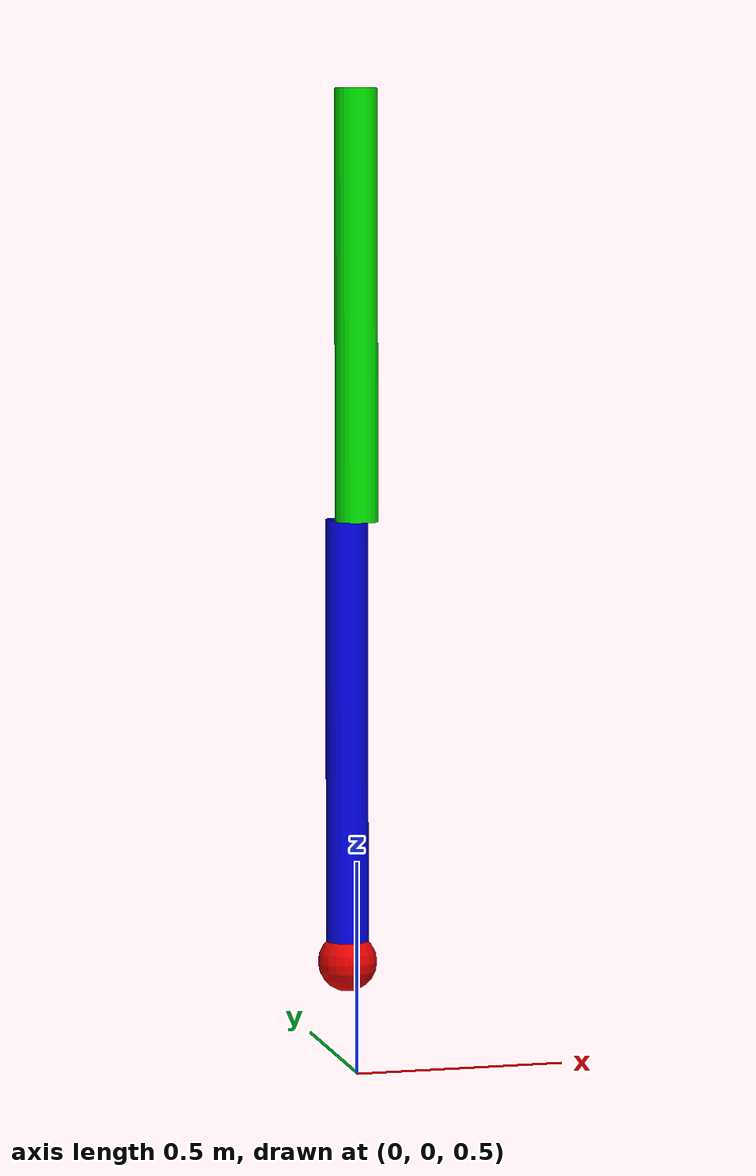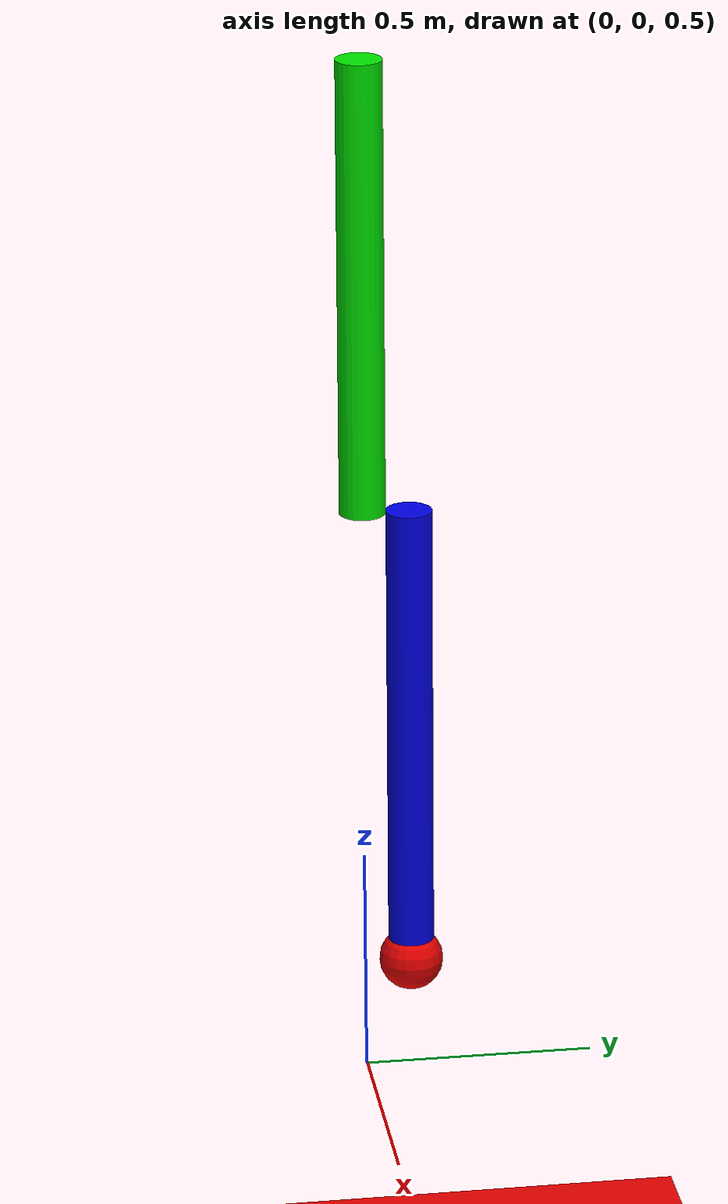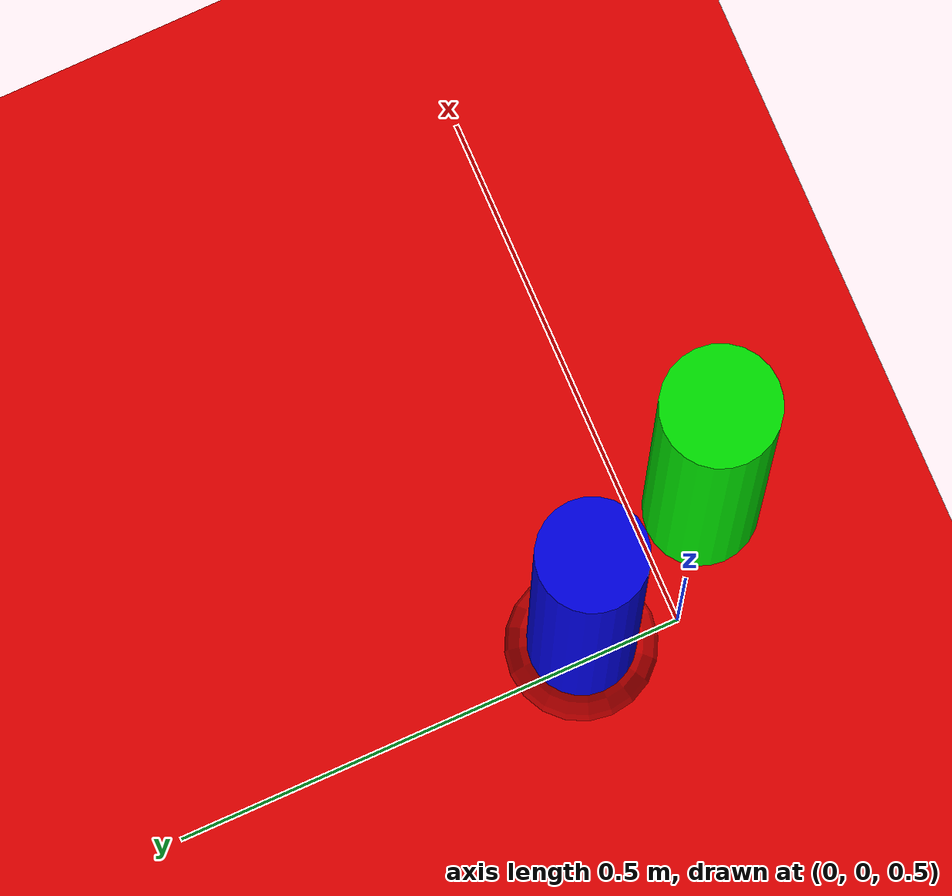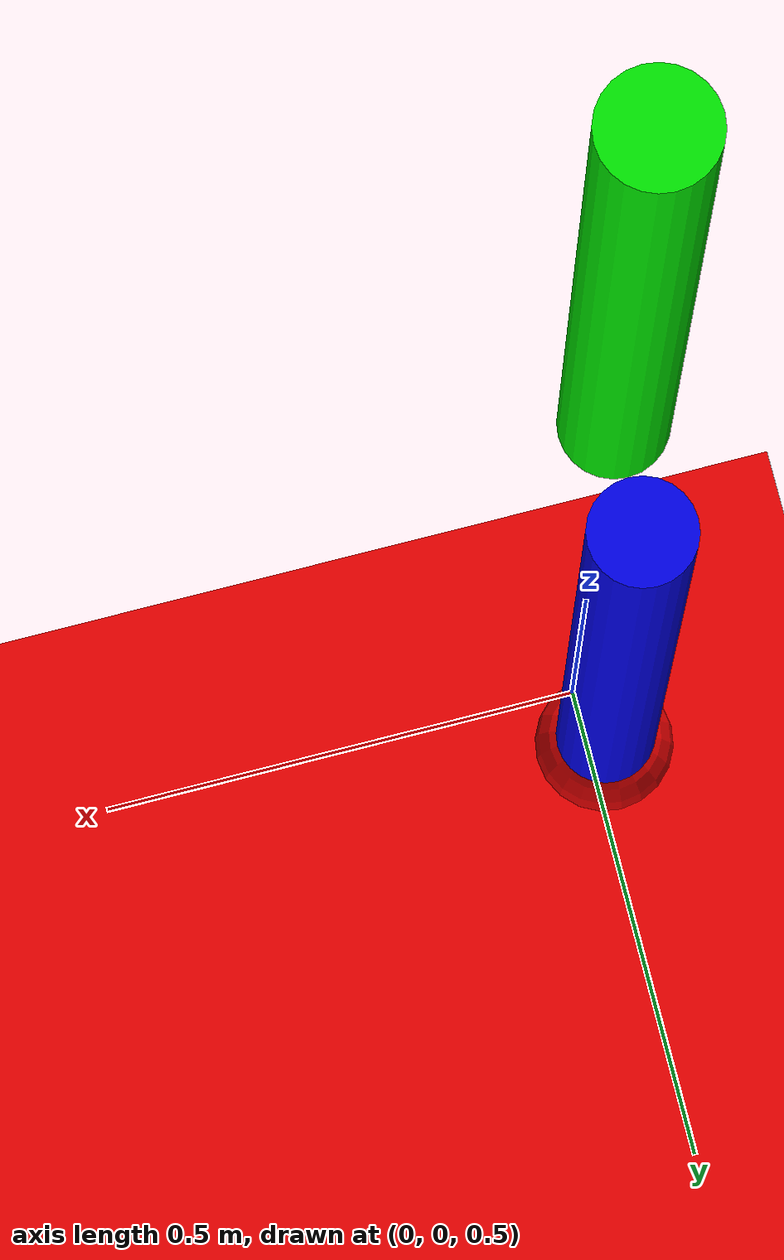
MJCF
<mujoco>
	<option timestep="0.0001" integrator="RK4" >
		<flag sensornoise="enable" energy="enable" contact="disable" />
	</option>
	<worldbody>
        <light diffuse=".5 .5 .5" pos="0 0 3" dir="0 0 -1"/>
		<geom type="plane" size="1 1 0.1" rgba=".9 0 0 1"/>
		<body pos="0 0 2.3" euler="0 180 0">
			<joint name="pin" type="hinge" axis = "0 -1 0" limited="true" range="-180 180" pos="0 0 -0.5"/>
			<geom type="cylinder" size="0.05 0.5" rgba="0 .9 0 1" mass="3.5"/>
			<body pos="0 0.1 1" euler="0 0 0">
				<joint name="pin2" type="hinge" axis = "0 -1 0" limited="true" range="0 90" pos="0 0 -0.5"/>
				<geom type="cylinder" size="0.05 0.5" rgba="0 0 .9 1" mass="1.5"/>
				<body pos="0 0 0.55" euler="0 0 0">
					<geom type="sphere" size="0.07" rgba="0.9 0 0 1" mass="0.4"/>
				</body>
			</body>
		</body>
	</worldbody>
	<actuator>
		<motor joint="pin" name="torque" gear="1" ctrllimited="true" ctrlrange="-100 100" />
		<position name="pservo1" joint="pin" kp="10" />
		<velocity name="vservo1" joint="pin" kv="10" />
		<motor joint="pin2" name="torque2" gear="1" ctrllimited="true" ctrlrange="-100 100" />
		<position name="pservo2" joint="pin2" kp="10" />
		<velocity name="vservo2" joint="pin2" kv="10" />
	</actuator>

</mujoco>
